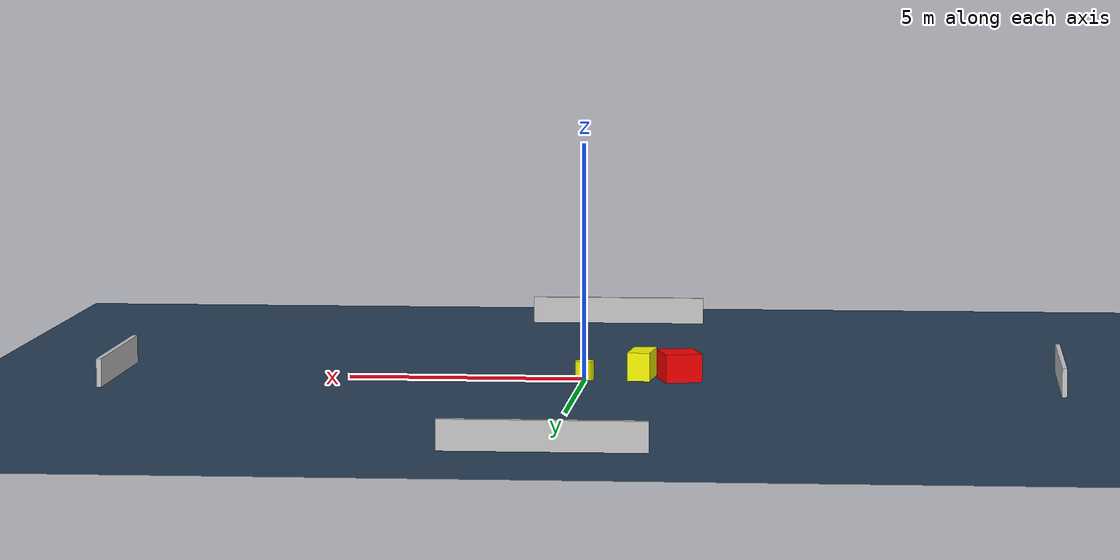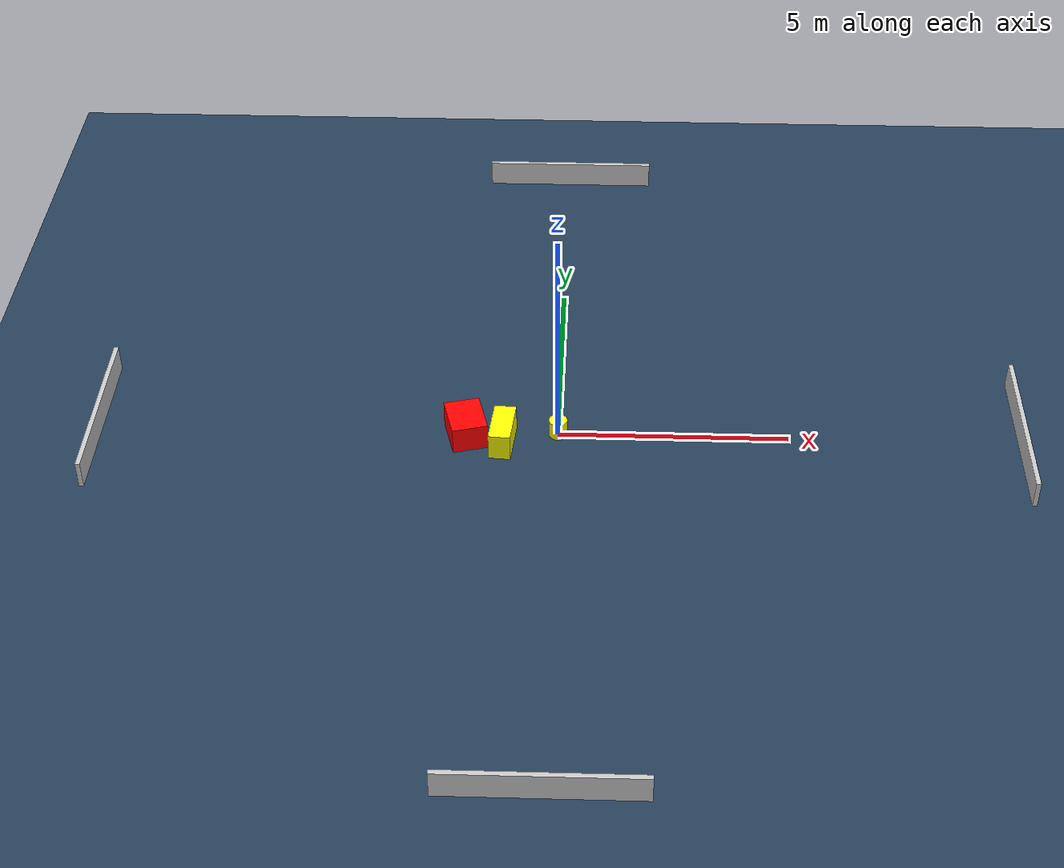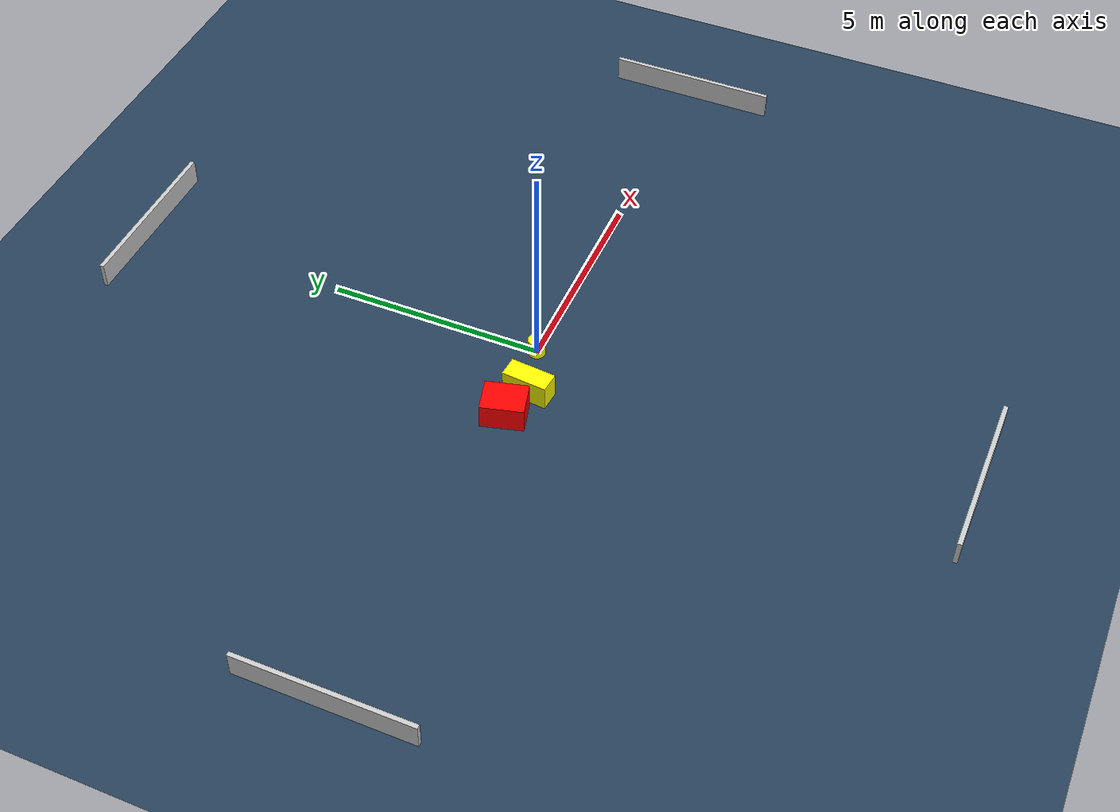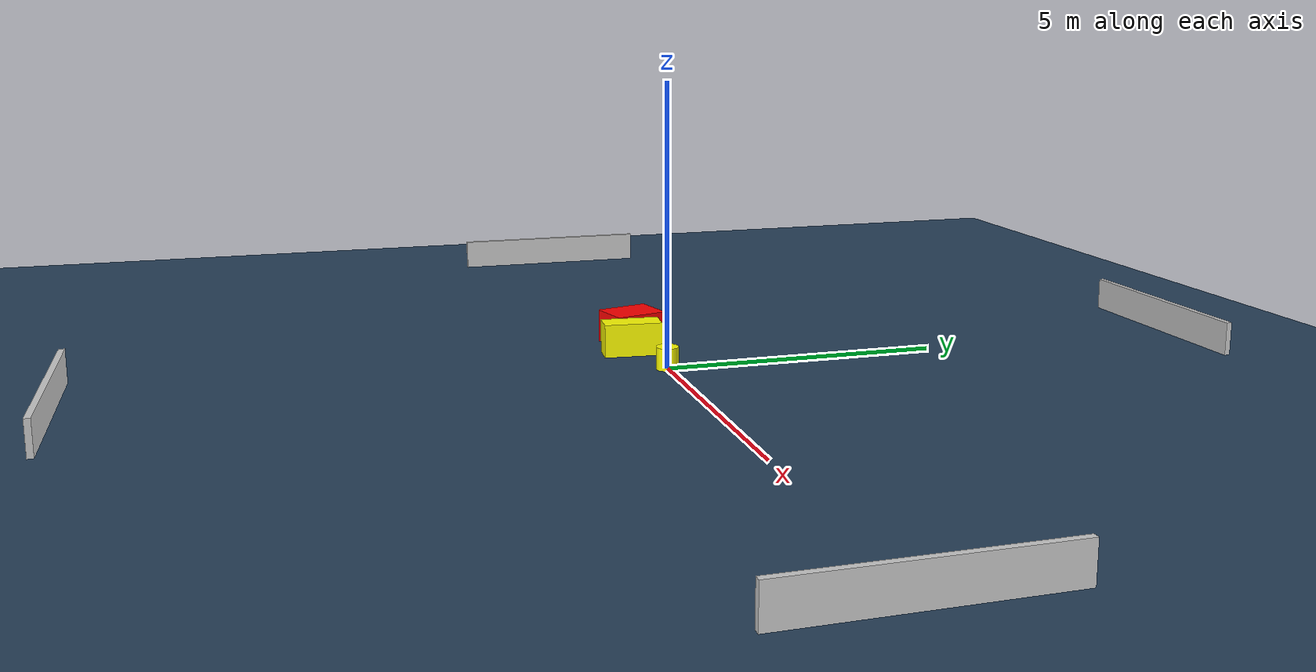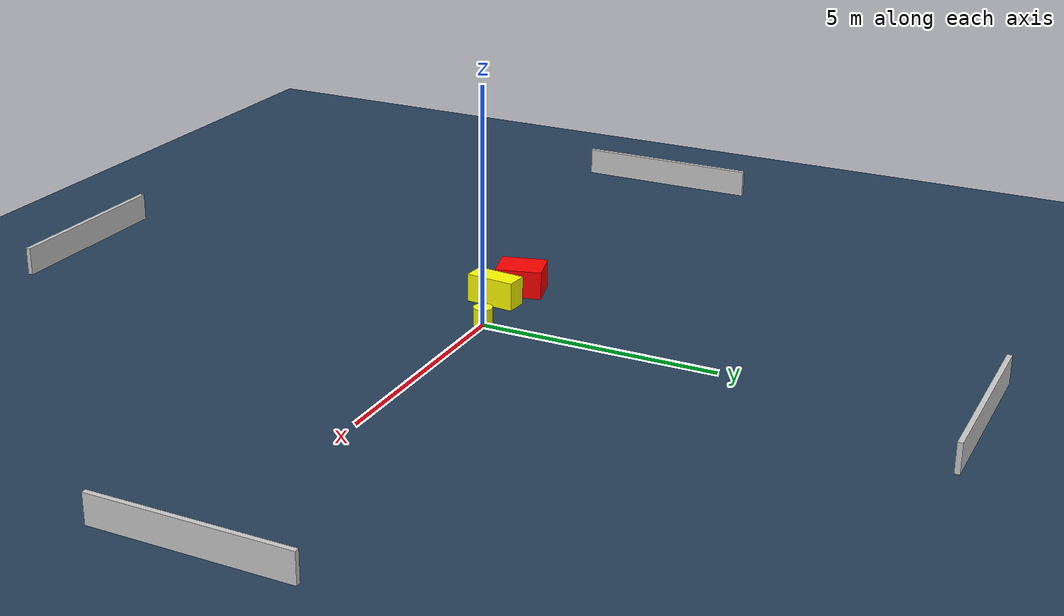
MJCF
<?xml version="1.0" ?>
<mujoco model="generated_environment">
  <option timestep="0.01" integrator="RK4" cone="elliptic"/>
  <default>
    <geom density="1"/>
  </default>
  <asset>
    <texture builtin="gradient" height="3072" name="skybox" rgb1="0.3 0.5 0.7" rgb2="0 0 0" type="skybox" width="512"/>
    <texture builtin="checker" height="300" name="groundplane" rgb1="0.2 0.3 0.4" rgb2="0.1 0.2 0.3" type="2d" width="300"/>
    <material name="groundplane" reflectance="0.2" texrepeat="5 5" texture="groundplane"/>
  </asset>
  <worldbody>
    <light dir="0 0 -1" directional="true" pos="0 0 1.5"/>
    <geom condim="3" friction="0.5 0.005 0.001" material="groundplane" name="floor" pos="0 0 0" size="0 0 0.05" type="plane"/>
    <body name="walls">
      <geom name="wall_1" condim="4" pos="-10.0 0.0 0.3" rgba="0.800000011920929 0.800000011920929 0.800000011920929 1.0" size="0.05 2.0 0.3" type="box"/>
      <geom name="wall_2" condim="4" pos="10.0 0.0 0.3" rgba="0.800000011920929 0.800000011920929 0.800000011920929 1.0" size="0.05 2.0 0.3" type="box"/>
      <geom name="wall_3" condim="4" pos="0.0 -10.0 0.3" rgba="0.800000011920929 0.800000011920929 0.800000011920929 1.0" size="2.0 0.05 0.3" type="box"/>
      <geom name="wall_4" condim="4" pos="0.0 10.0 0.3" rgba="0.800000011920929 0.800000011920929 0.800000011920929 1.0" size="2.0 0.05 0.3" type="box"/>
    </body>
    <body name="robot">
      <joint name="joint_x" type="slide" pos="0 0 0" axis="1 0 0"/>
      <joint name="joint_y" type="slide" pos="0 0 0" axis="0 1 0"/>
      <geom name="robot" type="cylinder" pos="0.0 0.0 0.2" size="0.2 0.2 0.0" mass="5.0" friction="1.0 0.005 0.0001" condim="4" rgba="1.0 1.0 0.0 1.0"/>
    </body>
    <body name="obstacle_1_movable">
      <geom name="obstacle_1_movable" condim="4" pos="-1.1928294962148036 -0.32643422340257877 0.3" euler="0 0 265.0486783540731" friction="0.0 0.005 0.001" rgba="1.0 1.0 0.0 1.0" size="0.5251431124892538 0.2374912940047148 0.3" type="box" mass="0.1"/>
      <joint type="free"/>
    </body>
    <body name="obstacle_2_static">
      <geom name="obstacle_2_static" condim="4" pos="-1.9941418644456392 -0.10854887939733984 0.3" euler="0 0 194.89896365859343" friction="0.0 0.005 0.001" rgba="1.0 0.0 0.0 1.0" size="0.38843193416988897 0.4890306657822279 0.3" type="box"/>
    </body>
  </worldbody>
  <actuator>
    <motor name="actuator_x" joint="joint_x" gear="1" ctrlrange="-1 1"/>
    <motor name="actuator_y" joint="joint_y" gear="1" ctrlrange="-1 1"/>
  </actuator>
</mujoco>
